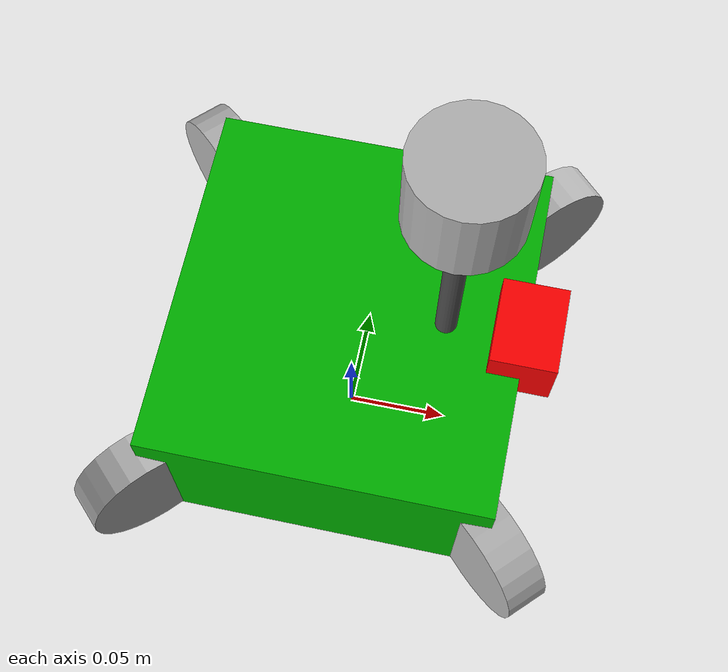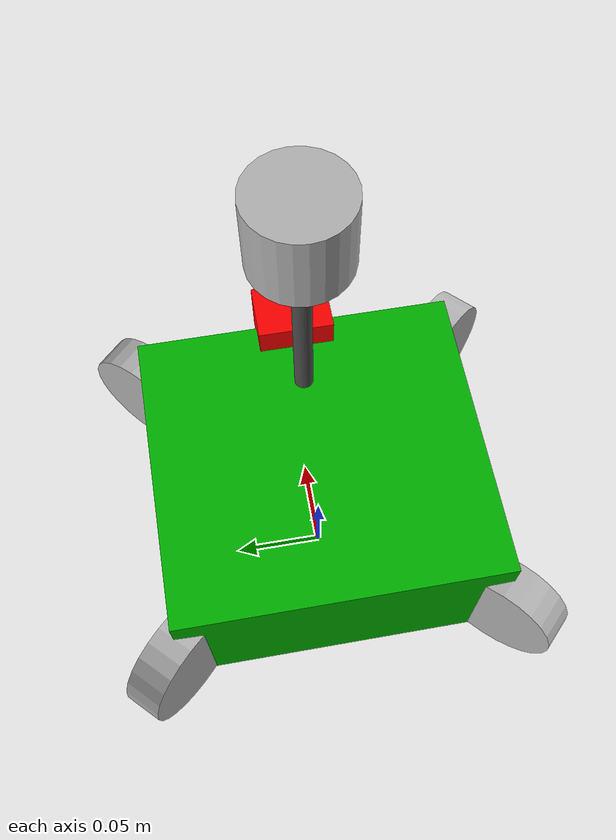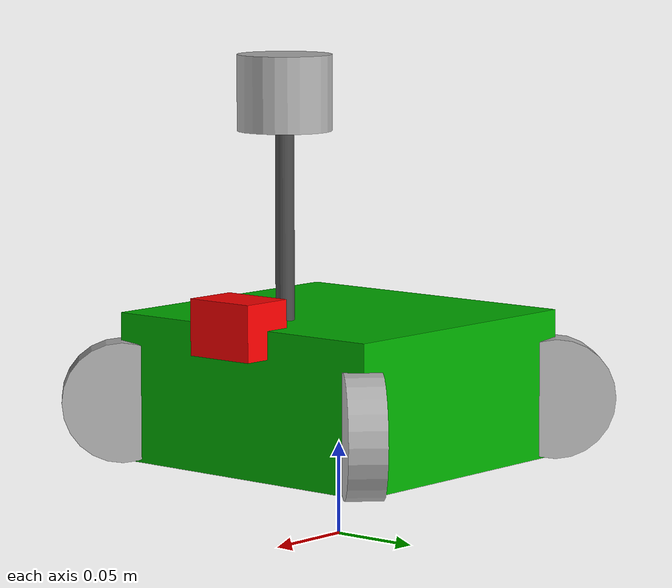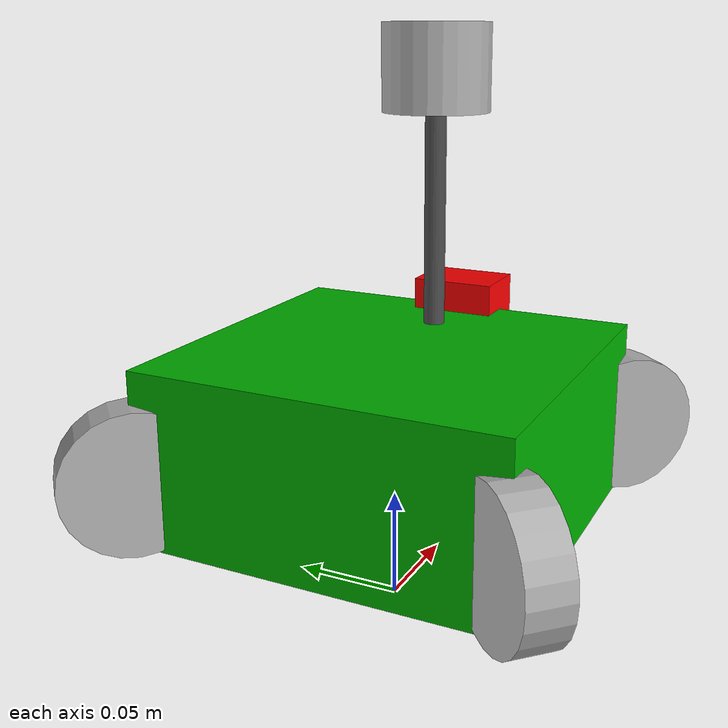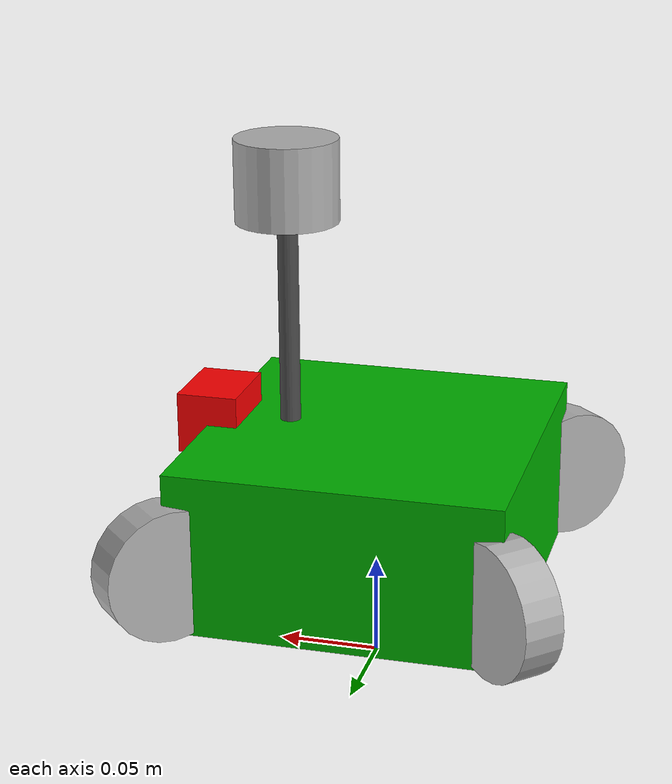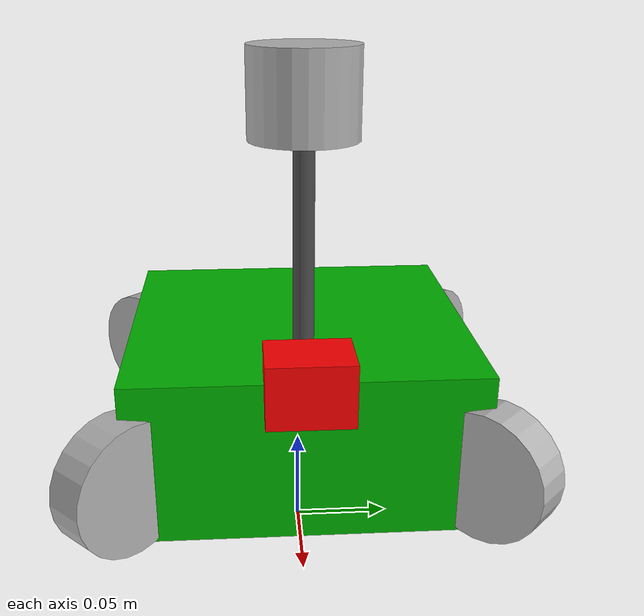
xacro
<?xml version="1.0"?>
<robot name="mecanum_yahboomcar"
       xmlns:xacro="http://www.ros.org/wiki/xacro">

    <!-- 数学常数定义 -->
    <xacro:property name="M_PI" value="3.1415926535897931" />

    <!-- Base footprint (地面投影点) -->
    <link name="base_footprint"/>

    <!-- Main body -->
    <link name="base_link">
        <inertial>
            <origin xyz="0 0 0.04" rpy="0 0 0"/>
            <mass value="1.0"/>
            <inertia ixx="0.01" ixy="0" ixz="0" iyy="0.01" iyz="0" izz="0.01"/>
        </inertial>
        <visual>
            <origin xyz="0 0 0" rpy="0 0 0"/>
            <geometry>
                <box size="0.16 0.17 0.08"/>
            </geometry>
            <material name="green">
                <color rgba="0 0.7 0 1"/>
            </material>
        </visual>
        <collision>
            <origin xyz="0 0 0" rpy="0 0 0"/>
            <geometry>
                <box size="0.16 0.17 0.08"/>
            </geometry>
        </collision>
    </link>

    <!-- base_footprint to base_link -->
    <joint name="base_joint" type="fixed">
        <parent link="base_footprint"/>
        <child link="base_link"/>
        <origin xyz="0 0 0.0815" rpy="0 0 0"/>
    </joint>

    <!-- IMU -->
    <link name="imu_link">
        <inertial>
            <mass value="0.01"/>
            <inertia ixx="1e-6" ixy="0" ixz="0" iyy="1e-6" iyz="0" izz="1e-6"/>
        </inertial>
    </link>
    <joint name="base_imu" type="fixed">
        <parent link="base_link"/>
        <child link="imu_link"/>
        <origin xyz="-0.06 0.01 0.01" rpy="0 3.1415 1.5707"/>
    </joint>

    <!-- Laser Mount (支撑柱) -->
    <link name="laser_mount">
        <inertial>
            <origin xyz="0 0 0.05" rpy="0 0 0"/>
            <mass value="0.05"/>
            <inertia ixx="5e-5" ixy="0" ixz="0" iyy="5e-5" iyz="0" izz="1e-6"/>
        </inertial>
        <visual>
            <origin xyz="0 0 0.05" rpy="0 0 0"/>
            <geometry>
                <cylinder radius="0.005" length="0.1"/>
            </geometry>
            <material name="darkgray"><color rgba="0.3 0.3 0.3 1"/></material>
        </visual>
        <collision>
            <origin xyz="0 0 0.05" rpy="0 0 0"/>
            <geometry>
                <cylinder radius="0.005" length="0.1"/>
            </geometry>
        </collision>
    </link>

    <!-- 激光支架连接到小车主体 -->
    <joint name="laser_mount_joint" type="fixed">
        <parent link="base_link"/>
        <child link="laser_mount"/>
        <origin xyz="0.0435 0 0.04" rpy="0 0 0"/>
    </joint>

    <!-- Laser Scanner -->
    <link name="laser_link">
        <inertial>
            <origin xyz="0 0 0" rpy="0 0 0"/>
            <mass value="0.1"/>
            <inertia ixx="2e-5" ixy="0" ixz="0" iyy="8e-5" iyz="0" izz="1e-4"/>
        </inertial>
        <visual>
            <origin xyz="0 0 0" rpy="0 0 0"/>
            <geometry>
                <cylinder radius="0.025" length="0.04"/>
            </geometry>
            <material name="gray"><color rgba="0.7 0.7 0.7 1"/></material>
        </visual>
        <collision>
            <origin xyz="0 0 0" rpy="0 0 0"/>
            <geometry>
                <cylinder radius="0.025" length="0.04"/>
            </geometry>
        </collision>
    </link>

    <!-- 激光雷达连接到支架顶部 -->
    <joint name="laser_joint" type="fixed">
        <parent link="laser_mount"/>
        <child link="laser_link"/>
        <origin xyz="0 0 0.12" rpy="0 0 0"/>
    </joint>

    <!-- Camera -->
    <link name="camera_link">
        <inertial>
            <origin xyz="0 0 0" rpy="0 0 0"/>
            <mass value="0.02"/>
            <inertia ixx="1e-6" ixy="0.0" ixz="0.0" iyy="1e-6" iyz="0.0" izz="1e-6"/>
        </inertial>
        <visual>
            <geometry>
                <box size="0.03 0.04 0.03"/>
            </geometry>
            <material name="red"><color rgba="1 0 0 1"/></material>
        </visual>
        <collision>
            <geometry>
                <box size="0.03 0.04 0.03"/>
            </geometry>
        </collision>
    </link>

    <!-- Camera Joint -->
    <joint name="camera_joint" type="fixed">
        <parent link="base_link"/>
        <child link="camera_link"/>
        <origin xyz="0.08 0 0.04" rpy="0 0 0"/>
    </joint>

    <!-- ==================== MECANUM WHEELS ==================== -->

    <!-- Wheel parameters -->
    <xacro:property name="wheel_radius" value="0.0325"/>
    <xacro:property name="wheel_width" value="0.02"/>
    <xacro:property name="wheel_mass" value="0.1"/>

    <!-- 轮子惯性矩阵计算 -->
    <xacro:property name="wheel_ixx" value="${0.5 * wheel_mass * wheel_radius * wheel_radius}"/>
    <xacro:property name="wheel_iyy" value="${(1/12) * wheel_mass * (3 * wheel_radius * wheel_radius + wheel_width * wheel_width)}"/>
    <xacro:property name="wheel_izz" value="${wheel_iyy}"/>

    <!-- 四个轮子的定义（保持不变） -->
    <!-- Front Right Wheel -->
    <link name="front_right_wheel">
        <inertial>
            <origin xyz="0 0 0" rpy="0 0 0"/>
            <mass value="${wheel_mass}"/>
            <inertia ixx="${wheel_ixx}" ixy="0.0" ixz="0.0" iyy="${wheel_iyy}" iyz="0.0" izz="${wheel_izz}"/>
        </inertial>
        <visual>
            <origin xyz="0 0 0" rpy="${M_PI/2} 0 0"/>
            <geometry>
                <cylinder radius="${wheel_radius}" length="${wheel_width}"/>
            </geometry>
            <material name="gray"><color rgba="0.7 0.7 0.7 1"/></material>
        </visual>
        <collision>
            <origin xyz="0 0 0" rpy="${M_PI/2} 0 0"/>
            <geometry>
                <cylinder radius="${wheel_radius}" length="${wheel_width}"/>
            </geometry>
        </collision>
    </link>

    <joint name="front_right_joint" type="continuous">
        <parent link="base_link"/>
        <child link="front_right_wheel"/>
        <origin xyz="0.08 -0.0845 -0.0075" rpy="0 0 -0.7854"/>
        <axis xyz="0 1 0"/>
        <limit effort="100" velocity="10"/>
    </joint>

    <!-- Front Left Wheel -->
    <link name="front_left_wheel">
        <inertial>
            <origin xyz="0 0 0" rpy="0 0 0"/>
            <mass value="${wheel_mass}"/>
            <inertia ixx="${wheel_ixx}" ixy="0.0" ixz="0.0" iyy="${wheel_iyy}" iyz="0.0" izz="${wheel_izz}"/>
        </inertial>
        <visual>
            <origin xyz="0 0 0" rpy="${M_PI/2} 0 0"/>
            <geometry>
                <cylinder radius="${wheel_radius}" length="${wheel_width}"/>
            </geometry>
            <material name="gray"><color rgba="0.7 0.7 0.7 1"/></material>
        </visual>
        <collision>
            <origin xyz="0 0 0" rpy="${M_PI/2} 0 0"/>
            <geometry>
                <cylinder radius="${wheel_radius}" length="${wheel_width}"/>
            </geometry>
        </collision>
    </link>

    <joint name="front_left_joint" type="continuous">
        <parent link="base_link"/>
        <child link="front_left_wheel"/>
        <origin xyz="0.08 0.0845 -0.0075" rpy="0 0 0.7854"/>
        <axis xyz="0 1 0"/>
        <limit effort="100" velocity="10"/>
    </joint>

    <!-- Back Right Wheel -->
    <link name="back_right_wheel">
        <inertial>
            <origin xyz="0 0 0" rpy="0 0 0"/>
            <mass value="${wheel_mass}"/>
            <inertia ixx="${wheel_ixx}" ixy="0.0" ixz="0.0" iyy="${wheel_iyy}" iyz="0.0" izz="${wheel_izz}"/>
        </inertial>
        <visual>
            <origin xyz="0 0 0" rpy="${M_PI/2} 0 0"/>
            <geometry>
                <cylinder radius="${wheel_radius}" length="${wheel_width}"/>
            </geometry>
            <material name="gray"><color rgba="0.7 0.7 0.7 1"/></material>
        </visual>
        <collision>
            <origin xyz="0 0 0" rpy="${M_PI/2} 0 0"/>
            <geometry>
                <cylinder radius="${wheel_radius}" length="${wheel_width}"/>
            </geometry>
        </collision>
    </link>

    <joint name="back_right_joint" type="continuous">
        <parent link="base_link"/>
        <child link="back_right_wheel"/>
        <origin xyz="-0.08 -0.0845 -0.0075" rpy="0 0 0.7854"/>
        <axis xyz="0 1 0"/>
        <limit effort="100" velocity="10"/>
    </joint>

    <!-- Back Left Wheel -->
    <link name="back_left_wheel">
        <inertial>
            <origin xyz="0 0 0" rpy="0 0 0"/>
            <mass value="${wheel_mass}"/>
            <inertia ixx="${wheel_ixx}" ixy="0.0" ixz="0.0" iyy="${wheel_iyy}" iyz="0.0" izz="${wheel_izz}"/>
        </inertial>
        <visual>
            <origin xyz="0 0 0" rpy="${M_PI/2} 0 0"/>
            <geometry>
                <cylinder radius="${wheel_radius}" length="${wheel_width}"/>
            </geometry>
            <material name="gray"><color rgba="0.7 0.7 0.7 1"/></material>
        </visual>
        <collision>
            <origin xyz="0 0 0" rpy="${M_PI/2} 0 0"/>
            <geometry>
                <cylinder radius="${wheel_radius}" length="${wheel_width}"/>
            </geometry>
        </collision>
    </link>

    <joint name="back_left_joint" type="continuous">
        <parent link="base_link"/>
        <child link="back_left_wheel"/>
        <origin xyz="-0.08 0.0845 -0.0075" rpy="0 0 -0.7854"/>
        <axis xyz="0 1 0"/>
        <limit effort="100" velocity="10"/>
    </joint>

    <!-- ==================== GAZEBO PLUGINS ==================== -->

    <!-- 基础物理属性 -->
    <gazebo reference="base_link">
        <material>Gazebo/Green</material>
        <mu1>0.2</mu1>
        <mu2>0.2</mu2>
        <kp>1000000.0</kp>
        <kd>1.0</kd>
    </gazebo>

    <gazebo reference="laser_mount">
        <material>Gazebo/DarkGrey</material>
    </gazebo>

<!-- 激光雷达插件 - 使用已验证的配置 -->
<gazebo reference="laser_link">
    <sensor name="laserscan" type="ray">
        <plugin name="laserscan" filename="libgazebo_ros_ray_sensor.so">
            <ros>
                <namespace>/</namespace>
                <!-- 关键：将插件输出重映射到 /scan 话题 -->
                <remapping>~/out:=scan</remapping>
            </ros>
            <!-- 关键：明确指定输出为激光扫描格式 -->
            <output_type>sensor_msgs/LaserScan</output_type>
            <frame_name>laser_link</frame_name>
        </plugin>
        <always_on>true</always_on>
        <visualize>true</visualize>
        <update_rate>40</update_rate> <!-- 你可以根据需要调整频率，比如40Hz -->
        <pose>0 0 0 0 0 0</pose>
        <!-- 激光传感器配置 -->
        <ray>
            <!-- 设置扫描范围 -->
            <scan>
                <horizontal>
                    <samples>360</samples>
                    <resolution>1.0</resolution>
                    <min_angle>-3.14159</min_angle> <!-- -π 到 π，完整一圈 -->
                    <max_angle>3.14159</max_angle>
                </horizontal>
            </scan>
            <!-- 设置扫描距离 -->
            <range>
                <min>0.12</min>
                <max>3.5</max>
                <resolution>0.01</resolution>
            </range>
        </ray>
    </sensor>
</gazebo>

    <!-- 轮子物理属性 -->
    <gazebo reference="front_right_wheel">
        <material>Gazebo/Grey</material>
        <mu1>1.0</mu1>
        <mu2>1.0</mu2>
        <kp>1000000.0</kp>
        <kd>1.0</kd>
    </gazebo>

    <gazebo reference="front_left_wheel">
        <material>Gazebo/Grey</material>
        <mu1>1.0</mu1>
        <mu2>1.0</mu2>
        <kp>1000000.0</kp>
        <kd>1.0</kd>
    </gazebo>

    <gazebo reference="back_right_wheel">
        <material>Gazebo/Grey</material>
        <mu1>1.0</mu1>
        <mu2>1.0</mu2>
        <kp>1000000.0</kp>
        <kd>1.0</kd>
    </gazebo>

    <gazebo reference="back_left_wheel">
        <material>Gazebo/Grey</material>
        <mu1>1.0</mu1>
        <mu2>1.0</mu2>
        <kp>1000000.0</kp>
        <kd>1.0</kd>
    </gazebo>

 <gazebo reference="imu_link">
    <sensor name="imu_sensor" type="imu">
        <always_on>true</always_on>
        <update_rate>100</update_rate>
        <plugin name="imu_plugin" filename="libgazebo_ros_imu_sensor.so">
            <ros>
                <namespace>/</namespace>
                <!-- 将IMU输出重映射到 /imu/data -->
                <remapping>~/out:=imu/data</remapping>
            </ros>
            <initial_orientation_as_reference>false</initial_orientation_as_reference>
        </plugin>
        <!-- 保留你之前的噪声配置 -->
        <imu>
            <angular_velocity>
                <x><noise type="gaussian"><mean>0.0</mean><stddev>0.0002</stddev></noise></x>
                <y><noise type="gaussian"><mean>0.0</mean><stddev>0.0002</stddev></noise></y>
                <z><noise type="gaussian"><mean>0.0</mean><stddev>0.0002</stddev></noise></z>
            </angular_velocity>
            <linear_acceleration>
                <x><noise type="gaussian"><mean>0.0</mean><stddev>0.017</stddev></noise></x>
                <y><noise type="gaussian"><mean>0.0</mean><stddev>0.017</stddev></noise></y>
                <z><noise type="gaussian"><mean>0.0</mean><stddev>0.017</stddev></noise></z>
            </linear_acceleration>
        </imu>
    </sensor>
</gazebo>
    <!-- 摄像头插件 -->
    <gazebo reference="camera_link">
        <sensor type="camera" name="camera_sensor">
            <update_rate>30.0</update_rate>
            <camera name="camera">
                <horizontal_fov>1.047</horizontal_fov>
                <image>
                    <width>640</width>
                    <height>480</height>
                    <format>R8G8B8</format>
                </image>
                <clip>
                    <near>0.05</near>
                    <far>100</far>
                </clip>
            </camera>
            <plugin name="camera_controller" filename="libgazebo_ros_camera.so">
                <alwaysOn>true</alwaysOn>
                <updateRate>0.0</updateRate>
                <cameraName>camera</cameraName>
                <imageTopicName>image_raw</imageTopicName>
                <cameraInfoTopicName>camera_info</cameraInfoTopicName>
                <frameName>camera_link</frameName>
                <hackBaseline>0.07</hackBaseline>
            </plugin>
        </sensor>
    </gazebo>
  <!-- ros2_control -->
  <ros2_control name="MecanumController" type="system">
    <hardware>
      <plugin>gazebo_ros2_control/GazeboSystem</plugin>
    </hardware>
    <joint name="front_left_joint">
      <command_interface name="velocity"/>
      <state_interface name="position"/>
      <state_interface name="velocity"/>
    </joint>
    <joint name="front_right_joint">
      <command_interface name="velocity"/>
      <state_interface name="position"/>
      <state_interface name="velocity"/>
    </joint>
    <joint name="back_left_joint">
      <command_interface name="velocity"/>
      <state_interface name="position"/>
      <state_interface name="velocity"/>
    </joint>
    <joint name="back_right_joint">
      <command_interface name="velocity"/>
      <state_interface name="position"/>
      <state_interface name="velocity"/>
    </joint>
  </ros2_control>
  <!-- Gazebo plugin for ros2_control -->
<gazebo>
  <plugin filename="libgazebo_ros2_control.so" name="gazebo_ros2_control">
    <parameters>$(find yahboomcar_mecanum_controller)/config/mecanum_controller.yaml</parameters>
  </plugin>
</gazebo>
</robot>
